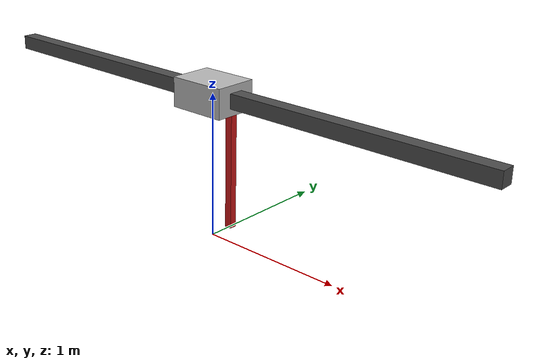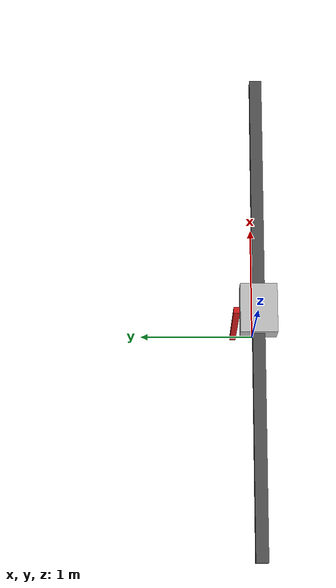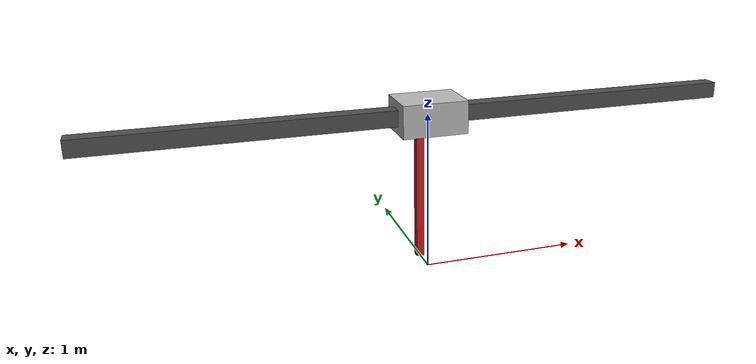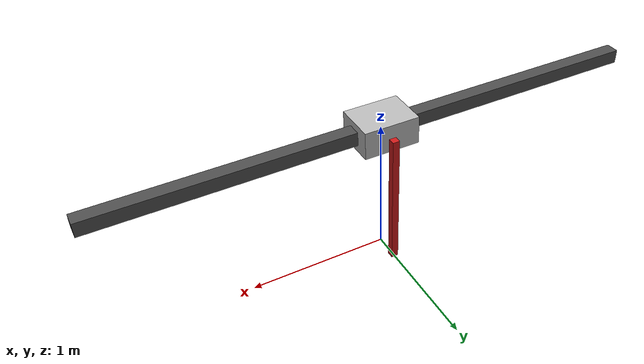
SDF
<?xml version="1.0"?>
<sdf version="1.8">
  <world name="cartpole_world">

    <!-- Core systems (same style as diff_drive, legacy-compatible) -->
    <plugin
      filename="ignition-gazebo-physics-system"
      name="ignition::gazebo::systems::Physics"/>
    <plugin
      filename="ignition-gazebo-scene-broadcaster-system"
      name="ignition::gazebo::systems::SceneBroadcaster"/>
    <plugin
      filename="ignition-gazebo-user-commands-system"
      name="ignition::gazebo::systems::UserCommands"/>

    <!-- Light -->
    <light name="sun" type="directional">
      <pose>0 0 10 0 0 0</pose>
      <direction>-0.5 0.1 -1</direction>
    </light>

    <!-- CartPole (IMPORTANT: include wrapped in model) -->
    <model name="cartpole">
      <pose>0 0 0 0 0 0</pose>

      <include merge="true">
        <uri>/home/mypc/cartpole_ws/install/cartpole_description/share/cartpole_description/models/cartpole</uri>
      </include>

      <!-- Joint states (for your bridge test) -->
      <plugin
        filename="ignition-gazebo-joint-state-publisher-system"
        name="ignition::gazebo::systems::JointStatePublisher"/>
    </model>

  </world>
</sdf>

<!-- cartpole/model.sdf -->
<sdf version="1.8">
  <model name="cartpole">

    <!-- ================= SLIDER (FIXED TO WORLD) ================= -->
    <link name="rail">
      <pose>0 0 1.0 0 0 0</pose>
      <inertial>
        <mass>1.0</mass>
        <inertia>
          <ixx>0.01</ixx><iyy>0.01</iyy><izz>0.01</izz>
        </inertia>
      </inertial>
      <visual name="vis">
        <geometry>
          <box><size>4 0.1 0.1</size></box>
        </geometry>
        <material>
          <ambient>0.3 0.3 0.3 1</ambient>
          <diffuse>0.3 0.3 0.3 1</diffuse>
          <specular>0.1 0.1 0.1 1</specular>
        </material>
      </visual>
    </link>

    <joint name="rail_fixed" type="fixed">
      <parent>world</parent>
      <child>rail</child>
    </joint>

    <!-- ================= CART ================= -->
    <link name="cart">
      <pose>0 0 1.0 0 0 0</pose>
      <inertial>
        <mass>2.0</mass>
        <inertia>
          <ixx>0.05</ixx><iyy>0.05</iyy><izz>0.05</izz>
        </inertia>
      </inertial>

      <visual name="vis">
        <geometry>
          <box><size>0.4 0.3 0.2</size></box>
        </geometry>
      </visual>

      <collision name="col">
        <geometry>
          <box><size>0.4 0.3 0.2</size></box>
        </geometry>
      </collision>
    </link>

    <!-- PRISMATIC JOINT (THIS **WILL MOVE** WITH CONTROLLER) -->
    <joint name="cart_slide" type="prismatic">
      <parent>rail</parent>
      <child>cart</child>
      <pose>0 0 0 0 0 0</pose>
      <axis>
        <xyz>1 0 0</xyz>
        <limit>
          <lower>-2</lower>
          <upper>2</upper>
          <effort>500</effort>
          <velocity>5</velocity>
        </limit>
        <dynamics>
          <damping>0.0</damping>
          <friction>0.0</friction>
        </dynamics>
      </axis>
    </joint>

    <!-- ================= POLE ================= -->
    <link name="pole">
      <!-- Pole frame located at the hinge, relative to the cart -->
      <pose relative_to="cart">0 0.175 0 0 0 0</pose>

      <inertial>
        <!-- COM is L/2 below the hinge -->
        <pose>0 0 -0.5 0 0 0</pose>
        <mass>0.3</mass>
        <inertia>
          <ixx>0.025</ixx>
          <iyy>0.025</iyy>
          <izz>0.000125</izz>
        </inertia>
      </inertial>

      <visual name="vis">
        <!-- Shift geometry DOWN so the top touches the hinge -->
        <pose>0 0 -0.5 0 0 0</pose>
        <geometry>
          <box><size>0.05 0.05 1.0</size></box>
        </geometry>
        <material>
          <ambient>0.8 0.1 0.1 1</ambient>
          <diffuse>0.8 0.1 0.1 1</diffuse>
          <specular>0.1 0.1 0.1 1</specular>
        </material>
      </visual>

      <collision name="col">
        <pose>0 0 -0.5 0 0 0</pose>
        <geometry>
          <box><size>0.05 0.05 1.0</size></box>
        </geometry>
      </collision>
    </link>

    <!-- ================= POLE HINGE ================= -->
    <joint name="pole_hinge" type="revolute">
      <parent>cart</parent>
      <child>pole</child>

      <!-- Joint frame coincides with pole link frame -->
      <pose>0 0 0 0 0 0</pose>

      <axis>
        <xyz>0 1 0</xyz>
        <limit>
          <effort>100</effort>
          <velocity>10</velocity>
        </limit>
        <dynamics>
          <damping>0.01</damping>
          <friction>0.0</friction>
        </dynamics>
      </axis>
    </joint>

    <!-- ================= JOINT CONTROLLER (REQUIRED FOR PRISMATIC) ================= -->
    <plugin
      filename="libignition-gazebo-joint-controller-system.so"
      name="ignition::gazebo::systems::JointController">
      <joint_name>cart_slide</joint_name>
      <use_force>true</use_force>
      <topic>/cart_force</topic>
    </plugin>

    <!-- ================= JOINT STATE PUBLISHER ================= -->
    <plugin
      filename="libignition-gazebo-joint-state-publisher-system.so"
      name="ignition::gazebo::systems::JointStatePublisher">
    </plugin>

  </model>
</sdf>
